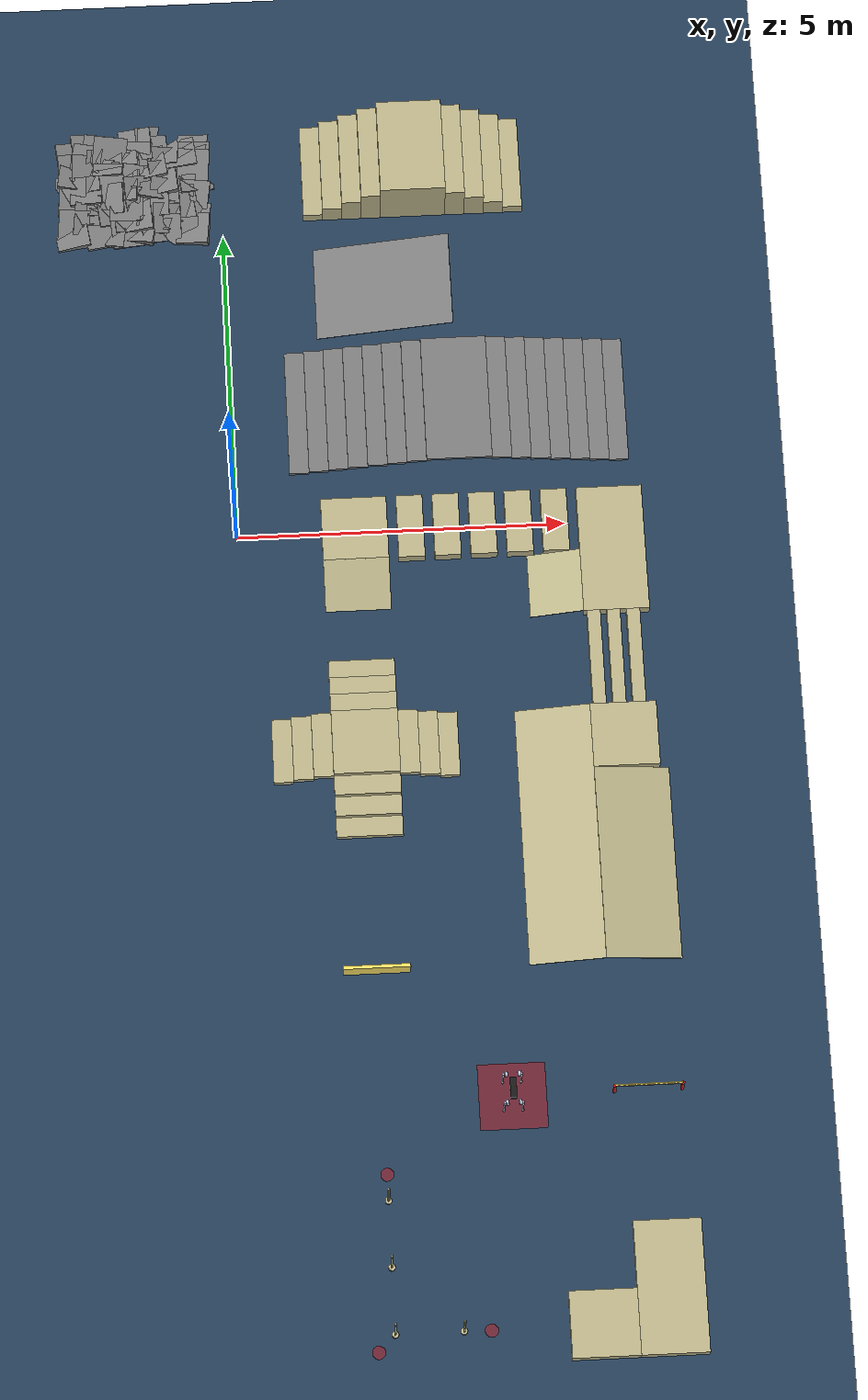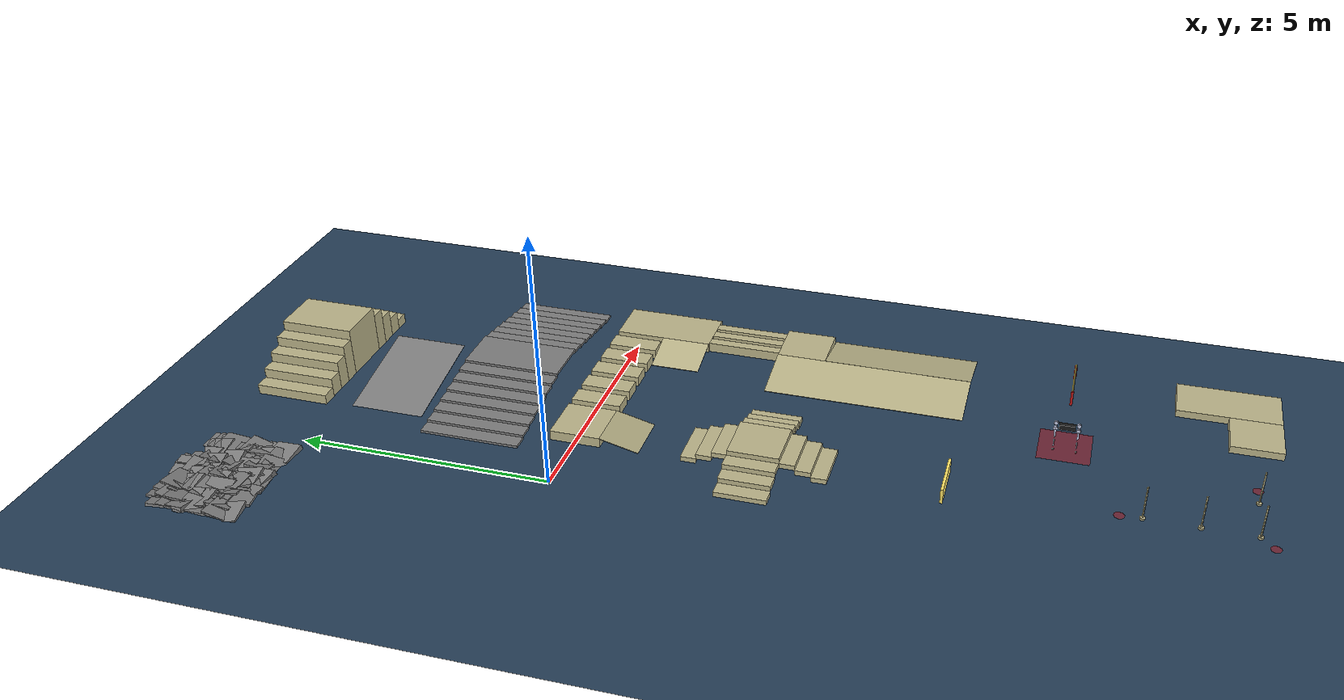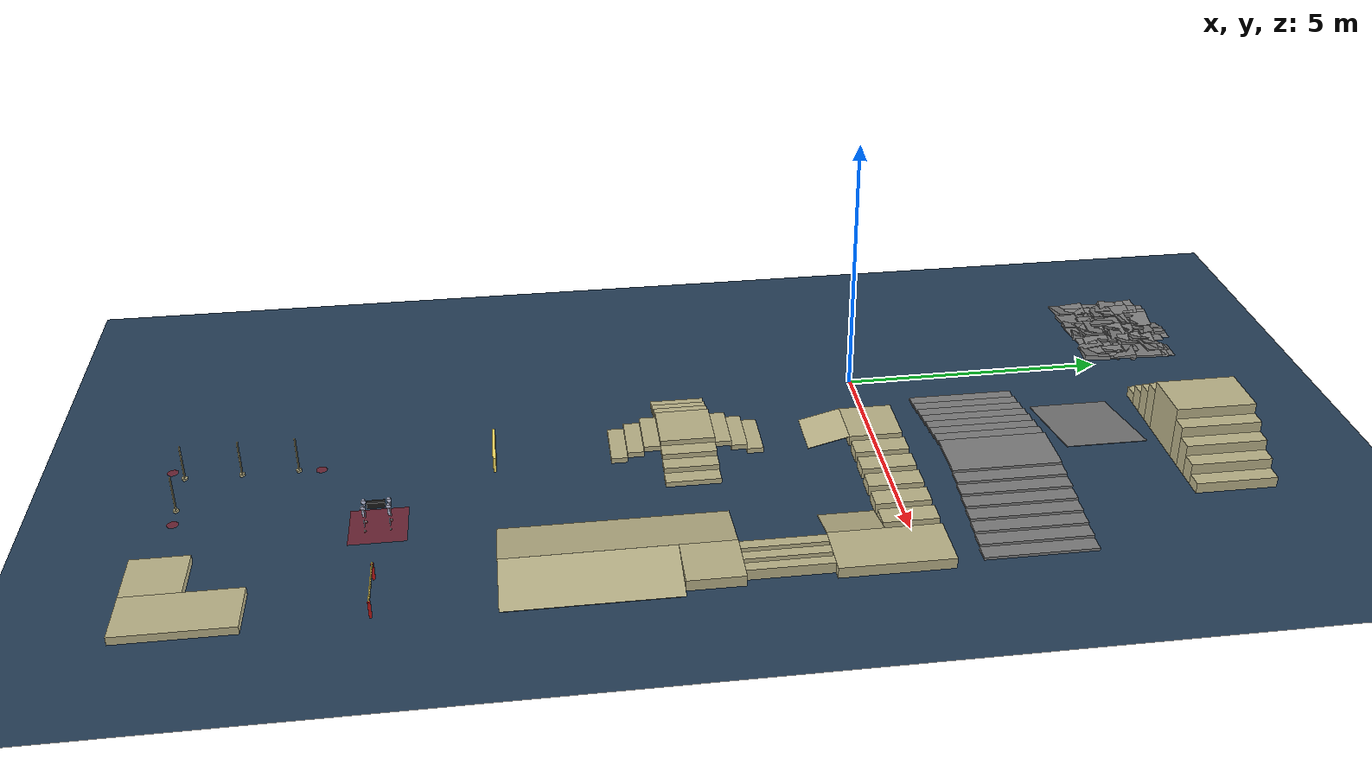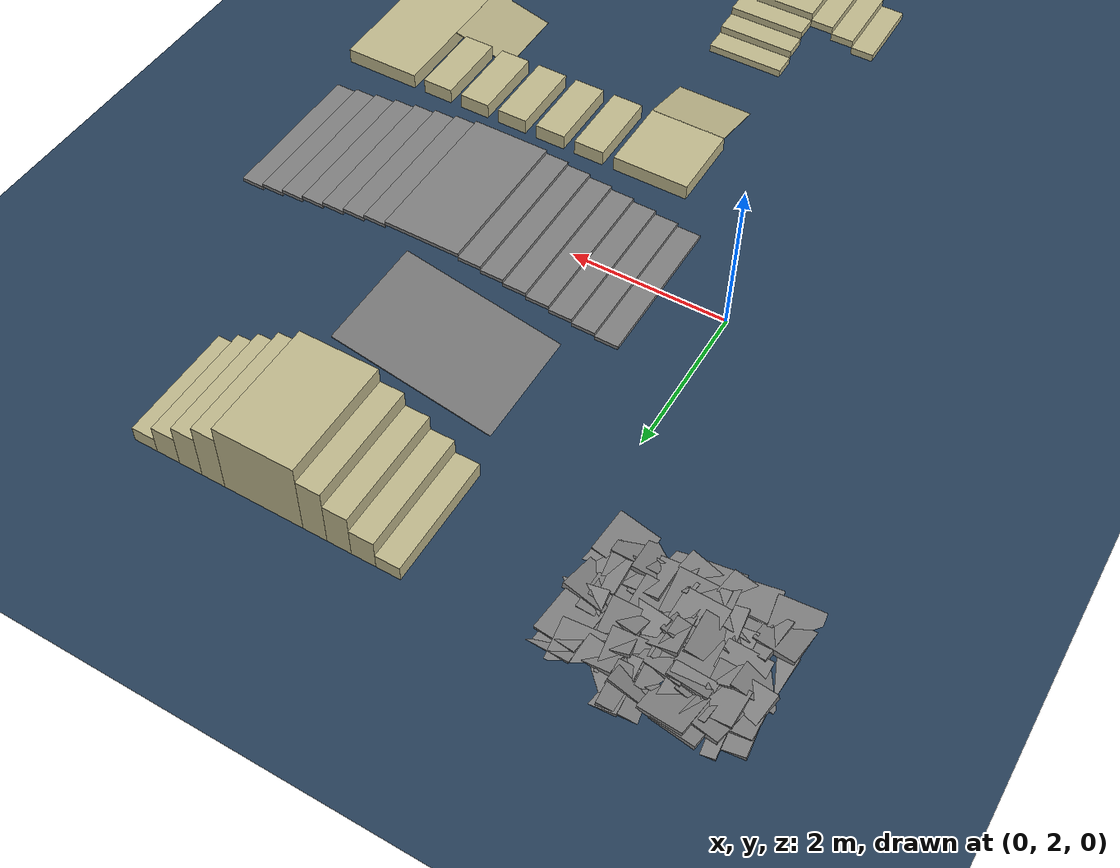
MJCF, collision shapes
<mujoco model="dog terrain scene">
<compiler angle="radian" meshdir="../meshes/"/>
<size njmax="500" nconmax="100"/>
<option gravity="0 0 -9.806" iterations="100" solver="Newton" timestep="0.005" integrator="implicitfast"/>

<default>
  <geom contype="1" conaffinity="1" condim="6" friction="0.6 0.005 0.01" margin="0.001" group="0"/>
  <light castshadow="false" diffuse="1 1 1"/>
  <joint damping="0.01" armature="0.01" frictionloss="0.2"/>
  <camera fovy="60"/>
</default>

<statistic center="3.7 -9.0 0.4" extent="5.0"/>
<visual>
<headlight diffuse="0.6 0.6 0.6" ambient="0.3 0.3 0.3" specular="0 0 0"/>
<rgba haze="0.15 0.25 0.35 1" com="0.502 1.0 0 0.5" contactforce="0.98 0.4 0.4 0.7" contactpoint="1.0 1.0 0.6 0.4"/>
<global azimuth="90" elevation="-20"/>
<scale com="0.2" forcewidth="0.035" contactwidth="0.10" contactheight="0.04"/>
</visual>
<asset>
<texture type="skybox" builtin="gradient" rgb1="0.3 0.5 0.7" rgb2="0 0 0" width="512" height="3072"/>
<texture type="2d" name="groundplane" builtin="checker" mark="edge" rgb1="0.2 0.3 0.4" rgb2="0.1 0.2 0.3" markrgb="0.8 0.8 0.8" width="300" height="300"/>
<material name="groundplane" texture="groundplane" texuniform="true" texrepeat="5 5" reflectance="0.2"/>

<!-- dog meshes -->
<mesh name="base"     file="base.STL"/>
<mesh name="ODIN1"    file="ODIN1.STL"/>
<mesh name="FL_hip"   file="FL_hip.STL"/>
<mesh name="FL_thigh" file="FL_thigh.STL"/>
<mesh name="FL_calf"  file="FL_calf.STL"/>
<mesh name="FL_foot"  file="FL_foot.STL"/>
<mesh name="FR_hip"   file="FR_hip.STL"/>
<mesh name="FR_thigh" file="FR_thigh.STL"/>
<mesh name="FR_calf"  file="FR_calf.STL"/>
<mesh name="FR_foot"  file="FR_foot.STL"/>
<mesh name="RR_hip"   file="RR_hip.STL"/>
<mesh name="RR_thigh" file="RR_thigh.STL"/>
<mesh name="RR_calf"  file="RR_calf.STL"/>
<mesh name="RR_foot"  file="RR_foot.STL"/>
<mesh name="RL_hip"   file="RL_hip.STL"/>
<mesh name="RL_thigh" file="RL_thigh.STL"/>
<mesh name="RL_calf"  file="RL_calf.STL"/>
<mesh name="RL_foot"  file="RR_foot.STL"/>
</asset>
<worldbody>
<light pos="0 0 1.5" dir="0 0 -1" directional="true" />
<camera name="track" mode="trackcom" pos="0 -1.3 1.6" xyaxes="1 0 0 0 0.707 0.707"/>
<geom name="floor" size="0 0 0.05" type="plane" material="groundplane" />

<!-- 30cm-high wall: rotated 90 degrees, placed along the x-axis, aligned with the T-shaped stairs centerline y=-3.50 -->
<geom pos="1.8 -7.0 0.15"
      type="box"
      size="0.025 0.5 0.15"
      quat="0.7071068 0.0 0.0 0.7071068"
      rgba="1.0 0.9 0.4 1.0"/>

<!-- Gravel and wood-chip pit: +x boundary aligned with the +x boundary of the 10-degree slope; +y boundary is 4m from the slope's -y boundary -->

<geom pos="4.8361 -12.5 0.075"
      type="box"
      size="0.5 0.5 0.075"
      quat="0.0 0.0 0.0 1.0"
      rgba="0.75 0.72 0.55 1.0"/>

<geom pos="5.8361 -12.0 0.075"
      type="box"
      size="0.5 1.0 0.075"
      quat="0.0 0.0 0.0 1.0"
      rgba="0.75 0.72 0.55 1.0"/>

<!-- Height-limit bar -->
<geom pos="6.2 -9.0 0.155"
      type="cylinder"
      size="0.025 0.155"
      quat="1.0 0.0 0.0 0.0"
      rgba="0.8 0.1 0.1 1.0" />

<geom pos="5.2 -9.0 0.155"
      type="cylinder"
      size="0.025 0.155"
      quat="1.0 0.0 0.0 0.0"
      rgba="0.8 0.1 0.1 1.0" />
<geom pos="5.7 -9.0 0.325"
      type="cylinder"
      size="0.015 0.5"
      quat="0.7071068 0.0 0.7071068 0.0"
      rgba="1.0 0.9 0.4 1.0"/>

<!-- 1m × 1m square colored patch, start zone -->
<geom pos="3.7 -9.0 0.0"
      type="box"
      size="0.5 0.5 0.001"
      rgba="1.0 0.0 0.0 0.35"
      contype="0"
      conaffinity="0" />

<!-- 10cm trapezoidal steps: T-shaped stairs, top platform aligned along the y-axis with the platform at x=5.7 y=-3.5 -->

<geom pos="1.80 -4.75 0.05" type="box" size="0.15 0.5 0.05" quat="0.7071068 0.0 0.0 0.7071068" rgba="0.75 0.72 0.55 1.0" />
<geom pos="1.80 -4.45 0.15" type="box" size="0.15 0.5 0.05" quat="0.7071068 0.0 0.0 0.7071068" rgba="0.75 0.72 0.55 1.0"/>
<geom pos="1.80 -4.15 0.25" type="box" size="0.15 0.5 0.05" quat="0.7071068 0.0 0.0 0.7071068" rgba="0.75 0.72 0.55 1.0"/>

<!-- Top platform: y = -3.50, aligned with the target platform along the y-axis -->
<geom pos="1.80 -3.50 0.35" type="box" size="0.5 0.5 0.05" quat="0.7071068 0.0 0.0 0.7071068" rgba="0.75 0.72 0.55 1.0"/>

<geom pos="1.80 -2.85 0.25" type="box" size="0.15 0.5 0.05" quat="0.7071068 0.0 0.0 0.7071068" rgba="0.75 0.72 0.55 1.0"/>
<geom pos="1.80 -2.55 0.15" type="box" size="0.15 0.5 0.05" quat="0.7071068 0.0 0.0 0.7071068" rgba="0.75 0.72 0.55 1.0"/>
<geom pos="1.80 -2.25 0.05" type="box" size="0.15 0.5 0.05" quat="0.7071068 0.0 0.0 0.7071068" rgba="0.75 0.72 0.55 1.0"/>

<!-- 10cm steps connecting the top platform to the ground in the +x direction, also moved to y = -3.50 -->

<geom pos="2.45 -3.50 0.25" type="box" size="0.15 0.5 0.05" quat="1.0 0.0 0.0 0.0" rgba="0.75 0.72 0.55 1.0"/>
<geom pos="2.75 -3.50 0.15" type="box" size="0.15 0.5 0.05" quat="1.0 0.0 0.0 0.0" rgba="0.75 0.72 0.55 1.0"/>
<geom pos="3.05 -3.50 0.05" type="box" size="0.15 0.5 0.05" quat="1.0 0.0 0.0 0.0" rgba="0.75 0.72 0.55 1.0"/>

<!-- 10cm steps connecting the top platform to the ground in the -x direction -->

<geom pos="1.15 -3.50 0.25" type="box" size="0.15 0.5 0.05" quat="1.0 0.0 0.0 0.0" rgba="0.75 0.72 0.55 1.0"/>
<geom pos="0.85 -3.50 0.15" type="box" size="0.15 0.5 0.05" quat="1.0 0.0 0.0 0.0" rgba="0.75 0.72 0.55 1.0"/>
<geom pos="0.55 -3.50 0.05" type="box" size="0.15 0.5 0.05" quat="1.0 0.0 0.0 0.0" rgba="0.75 0.72 0.55 1.0"/>

<!-- Ramp, wooden bridge A and wooden bridge B -->
<geom pos="1.8 -0.88 0.1" type="box" size="0.40 0.5 0.005" quat="0.701836 0.086175 -0.086175 0.701836" rgba="0.75 0.72 0.55 1.0"/>
<geom pos="1.8 0.0 0.10" type="box" size="0.5 0.5 0.10" quat="1.0 0.0 0.0 0.0" rgba="0.75 0.72 0.55 1.0"/>
<geom pos="2.65 0.0 0.10" type="box" size="0.2 0.5 0.10" quat="1.0 0.0 0.0 0.0" rgba="0.75 0.72 0.55 1.0"/>
<geom pos="3.2 0.0 0.10" type="box" size="0.2 0.5 0.10" quat="1.0 0.0 0.0 0.0" rgba="0.75 0.72 0.55 1.0"/>
<geom pos="3.75 0.0 0.10" type="box" size="0.2 0.5 0.10" quat="1.0 0.0 0.0 0.0" rgba="0.75 0.72 0.55 1.0"/>
<geom pos="4.3 0.0 0.10" type="box" size="0.2 0.5 0.10" quat="1.0 0.0 0.0 0.0" rgba="0.75 0.72 0.55 1.0"/>
<geom pos="4.85 0.0 0.10" type="box" size="0.2 0.5 0.10" quat="1.0 0.0 0.0 0.0" rgba="0.75 0.72 0.55 1.0"/>
<geom pos="5.7 -0.5 0.10" type="box" size="0.5 1.0 0.10" quat="1.0 0.0 0.0 0.0" rgba="0.75 0.72 0.55 1.0"/>
<geom pos="4.8002 -1.0 0.0951"
      type="box"
      size="0.4133 0.5 0.005"
      quat="0.992546 0.0 -0.121869 0.0"
      rgba="0.75 0.72 0.55 1.0"/>
<geom pos="5.35 -2.25 0.10" type="box" size="0.1 0.75 0.10" quat="1.0 0.0 0.0 0.0" rgba="0.75 0.72 0.55 1.0"/>
<geom pos="5.65 -2.25 0.10" type="box" size="0.1 0.75 0.10" quat="1.0 0.0 0.0 0.0" rgba="0.75 0.72 0.55 1.0"/>
<geom pos="5.95 -2.25 0.10" type="box" size="0.1 0.75 0.10" quat="1.0 0.0 0.0 0.0" rgba="0.75 0.72 0.55 1.0"/>
<geom pos="5.7 -3.5 0.10" type="box" size="0.5 0.5 0.10" quat="1.0 0.0 0.0 0.0" rgba="0.75 0.72 0.55 1.0"/>
<!-- 10-degree slope: 4m wide, slope's +y edge aligned with the platform's +y edge -->
<geom pos="4.6338 -5.0 0.0951"
      type="box"
      size="0.5759 2.0 0.005"
      quat="0.9961947 0.0 -0.0871557 0.0"
      rgba="0.75 0.72 0.55 1.0"/>
<!-- New 10-degree slope: 3m wide, high end joins the previous 10-degree slope's high end, descending in the +x direction -->
<geom pos="5.7681 -5.5 0.0951"
      type="box"
      size="0.5759 1.5 0.005"
      quat="0.9961947 0.0 0.0871557 0.0"
      rgba="0.75 0.72 0.55 1.0"/>

<!-- Slalom poles -->
<!-- 1m-diameter circular colored patch, visual only, no collision -->
<geom pos="1.8 -10.1 0.0"
      type="cylinder"
      size="0.1 0.001"
      rgba="1.0 0.0 0.0 0.35"
      contype="0"
      conaffinity="0" />

<geom pos="3.2 -12.5 0.0"
      type="cylinder"
      size="0.1 0.001"
      rgba="1.0 0.0 0.0 0.35"
      contype="0"
      conaffinity="0" />

<geom pos="1.55 -12.75 0.0"
      type="cylinder"
      size="0.1 0.001"
      rgba="1.0 0.0 0.0 0.35"
      contype="0"
      conaffinity="0" />

<!-- Original pole -->
<geom pos="1.8 -10.5 0.02"
      type="cylinder"
      size="0.05 0.02"
      quat="1.0 0.0 0.0 0.0"
      rgba="0.75 0.72 0.55 1.0" />

<geom pos="1.8 -10.5 0.37"
      type="cylinder"
      size="0.015 0.33"
      quat="1.0 0.0 0.0 0.0"
      rgba="0.75 0.72 0.55 1.0" />

<!-- 1st pole in the -y direction: 1m spacing -->
<geom pos="1.8 -11.5 0.02"
      type="cylinder"
      size="0.05 0.02"
      quat="1.0 0.0 0.0 0.0"
      rgba="0.75 0.72 0.55 1.0" />

<geom pos="1.8 -11.5 0.37"
      type="cylinder"
      size="0.015 0.33"
      quat="1.0 0.0 0.0 0.0"
      rgba="0.75 0.72 0.55 1.0" />

<!-- 2nd pole in the -y direction: another 1m spacing -->
<geom pos="1.8 -12.5 0.02"
      type="cylinder"
      size="0.05 0.02"
      quat="1.0 0.0 0.0 0.0"
      rgba="0.75 0.72 0.55 1.0" />

<geom pos="1.8 -12.5 0.37"
      type="cylinder"
      size="0.015 0.33"
      quat="1.0 0.0 0.0 0.0"
      rgba="0.75 0.72 0.55 1.0" />

<!-- 3rd pole in the +x direction: another 1m spacing -->
<geom pos="2.8 -12.5 0.02"
      type="cylinder"
      size="0.05 0.02"
      quat="1.0 0.0 0.0 0.0"
      rgba="0.75 0.72 0.55 1.0" />

<geom pos="2.8 -12.5 0.37"
      type="cylinder"
      size="0.015 0.33"
      quat="1.0 0.0 0.0 0.0"
      rgba="0.75 0.72 0.55 1.0" />

<!--===================================================================Other obstacles=====================================================================================-->

<!-- 5cm steps -->
<geom pos="1.0 2.0 0.025" type="box" size="0.15 1.0 0.025" quat="1.0 0.0 0.0 0.0" />
<geom pos="1.3 2.0 0.075" type="box" size="0.15 1.0 0.025" quat="1.0 0.0 0.0 0.0" />
<geom pos="1.6 2.0 0.125" type="box" size="0.15 1.0 0.025" quat="1.0 0.0 0.0 0.0" />
<geom pos="1.9 2.0 0.175" type="box" size="0.15 1.0 0.025" quat="1.0 0.0 0.0 0.0" />
<geom pos="2.2 2.0 0.225" type="box" size="0.15 1.0 0.025" quat="1.0 0.0 0.0 0.0" />
<geom pos="2.5 2.0 0.275" type="box" size="0.15 1.0 0.025" quat="1.0 0.0 0.0 0.0" />
<geom pos="2.8 2.0 0.325" type="box" size="0.15 1.0 0.025" quat="1.0 0.0 0.0 0.0" />
<geom pos="3.45 2.0 0.375" type="box" size="0.5 1.0 0.025" quat="1.0 0.0 0.0 0.0" />
<geom pos="4.1 2.0 0.325" type="box" size="0.15 1.0 0.025" quat="1.0 0.0 0.0 0.0" />
<geom pos="4.4 2.0 0.275" type="box" size="0.15 1.0 0.025" quat="1.0 0.0 0.0 0.0" />
<geom pos="4.7 2.0 0.225" type="box" size="0.15 1.0 0.025" quat="1.0 0.0 0.0 0.0" />
<geom pos="5.0 2.0 0.175" type="box" size="0.15 1.0 0.025" quat="1.0 0.0 0.0 0.0" />
<geom pos="5.3 2.0 0.125" type="box" size="0.15 1.0 0.025" quat="1.0 0.0 0.0 0.0" />
<geom pos="5.6 2.0 0.075" type="box" size="0.15 1.0 0.025" quat="1.0 0.0 0.0 0.0" />
<geom pos="5.9 2.0 0.025" type="box" size="0.15 1.0 0.025" quat="1.0 0.0 0.0 0.0" />

<!-- Slope -->
<geom pos="2.0 4.0 0.1" type="box" size="1.5 0.75 0.005" quat="0.9950041652780258 0.0 -0.09983341664682815 0.0" />

<!-- 20cm solid steps: each tread differs in height by 0.20m, 1m platform in the middle, ascend/descend on both sides -->
<geom pos="1.4 6.0 0.10" type="box" size="0.15 0.75 0.10" quat="1.0 0.0 0.0 0.0" rgba="0.75 0.72 0.55 1.0"/>
<geom pos="1.7 6.0 0.20" type="box" size="0.15 0.75 0.20" quat="1.0 0.0 0.0 0.0" rgba="0.75 0.72 0.55 1.0"/>
<geom pos="2.0 6.0 0.30" type="box" size="0.15 0.75 0.30" quat="1.0 0.0 0.0 0.0" rgba="0.75 0.72 0.55 1.0"/>
<geom pos="2.3 6.0 0.40" type="box" size="0.15 0.75 0.40" quat="1.0 0.0 0.0 0.0" rgba="0.75 0.72 0.55 1.0"/>
<geom pos="2.95 6.0 0.50" type="box" size="0.50 0.75 0.50" quat="1.0 0.0 0.0 0.0" rgba="0.75 0.72 0.55 1.0"/>
<geom pos="3.60 6.0 0.40" type="box" size="0.15 0.75 0.40" quat="1.0 0.0 0.0 0.0" rgba="0.75 0.72 0.55 1.0"/>
<geom pos="3.90 6.0 0.30" type="box" size="0.15 0.75 0.30" quat="1.0 0.0 0.0 0.0" rgba="0.75 0.72 0.55 1.0"/>
<geom pos="4.20 6.0 0.20" type="box" size="0.15 0.75 0.20" quat="1.0 0.0 0.0 0.0" rgba="0.75 0.72 0.55 1.0"/>
<geom pos="4.50 6.0 0.10" type="box" size="0.15 0.75 0.10" quat="1.0 0.0 0.0 0.0" rgba="0.75 0.72 0.55 1.0"/>
<geom pos="-2.3179973398407565 5.173660321080885 -0.25" type="box" size="0.2568216778785459 0.2608020098770089 0.2619541072037832" quat="0.9930658271270357 -0.05910360995856133 -0.06731065544310916 0.0761334482746007"/>
<geom pos="-2.3179973398407565 5.3620612607436735 -0.25" type="box" size="0.23778028947050467 0.26051225137569556 0.27137457425982286" quat="0.9959802827127009 0.07435995796871331 0.0004862731479656538 -0.04993632582444846"/>
<geom pos="-2.3179973398407565 5.545897059602109 -0.25" type="box" size="0.23841994611378936 0.2717839884518381 0.22585827399286504" quat="0.9983504429181294 -0.004811901627841528 0.03471877670768104 -0.045473566737405234"/>
<geom pos="-2.3179973398407565 5.7436240471772795 -0.25" type="box" size="0.2552179019048769 0.2548992578792955 0.22547735976326444" quat="0.9968270877924189 -0.029673908987198697 0.06777847718526858 -0.029347814214192768"/>
<geom pos="-2.3179973398407565 5.940214647011584 -0.25" type="box" size="0.24313116620329878 0.2372064979204117 0.26079933745117434" quat="0.9952106364954509 0.05088987714749159 -0.07605843245051555 -0.03436748846516202"/>
<geom pos="-2.3179973398407565 6.165430585901471 -0.25" type="box" size="0.24786042386990592 0.2322559052231109 0.2644037606269708" quat="0.9936075351397807 -0.05017393314139304 0.06986162224674641 -0.07311632022760194"/>
<geom pos="-2.3179973398407565 6.315657865031069 -0.25" type="box" size="0.23704265198840277 0.24982080672772003 0.2530694373586838" quat="0.9981716459301547 0.036179123385437884 0.04523497974247521 0.017269420947002005"/>
<geom pos="-2.3179973398407565 6.489372835072359 -0.25" type="box" size="0.2647428927965494 0.2716292502682415 0.23725049444938928" quat="0.9954041516289313 0.019099981466976248 0.07663366510923347 0.05415761257454444"/>
<geom pos="-2.094119617957536 5.194943631570213 -0.25" type="box" size="0.23176840693038148 0.23782936054799508 0.2282032657053922" quat="0.9973366591969123 0.030692664684553082 -0.030015392527106853 0.058962910104125923"/>
<geom pos="-2.094119617957536 5.441090326561234 -0.25" type="box" size="0.2602142310926322 0.27213502289176367 0.2574009440402366" quat="0.9948915480473169 0.023650461407535205 0.08508706956405496 -0.04890453856469255"/>
<geom pos="-2.094119617957536 5.642958951230403 -0.25" type="box" size="0.24800055056479955 0.24050676557282252 0.23522489807277194" quat="0.9912055235117067 0.06188914817453858 -0.09720856678264424 -0.0650525790586179"/>
<geom pos="-2.094119617957536 5.884810142659838 -0.25" type="box" size="0.24637516954806898 0.24364583504893206 0.2682443460752295" quat="0.9964495083946477 -0.07467561549070643 -0.038754439691442995 0.003165924091257204"/>
<geom pos="-2.094119617957536 6.129893093768145 -0.25" type="box" size="0.2378958269703999 0.25045408022075055 0.24760364656411665" quat="0.9946240462872651 -0.03963038800955788 -0.08917648605658504 0.03464091840526007"/>
<geom pos="-2.094119617957536 6.31135792935651 -0.25" type="box" size="0.2612154064649683 0.2252849660353503 0.26933214617336004" quat="0.997742809172301 0.019590451180868298 0.06391648942914147 -0.006339033565912353"/>
<geom pos="-2.094119617957536 6.4905285510291915 -0.25" type="box" size="0.22768983323309258 0.23025468157122184 0.2748062344121069" quat="0.9940843963100783 0.05105793020576152 0.009164090402224958 -0.0954218016127878"/>
<geom pos="-2.094119617957536 6.650993287072798 -0.25" type="box" size="0.25443787917913946 0.24575387105878618 0.22934424641420587" quat="0.9953832160779188 -0.0075142647566912866 0.08305501342257929 0.04751477371219154"/>
<geom pos="-1.8951777534978893 5.178742263102535 -0.25" type="box" size="0.256127371544264 0.24353861032614957 0.2714578153598507" quat="0.996547165679354 -0.008558846106514282 0.009384988866828401 0.08205129318749771"/>
<geom pos="-1.8951777534978893 5.353646654030374 -0.25" type="box" size="0.23858897994497189 0.2426691342857623 0.26961659613969635" quat="0.997689480058865 0.014145078555906384 0.009115651940537827 -0.06582190381793727"/>
<geom pos="-1.8951777534978893 5.575640096199311 -0.25" type="box" size="0.24430646334884096 0.2676093509240798 0.23693271670520474" quat="0.9976019172675967 -0.06794745094616256 0.006187887696065785 -0.011630503849579829"/>
<geom pos="-1.8951777534978893 5.728196634759373 -0.25" type="box" size="0.25668697148716296 0.2743986770827004 0.23696403861156407" quat="0.9946311966964959 -0.0774649076913635 0.05866511796477466 0.03558615698054331"/>
<geom pos="-1.8951777534978893 5.954288148947323 -0.25" type="box" size="0.2748179458028994 0.25407956175122554 0.25142548243710355" quat="0.9927720663552536 0.03885622734718657 0.06180632563910765 0.09525647469886914"/>
<geom pos="-1.8951777534978893 6.198076908897641 -0.25" type="box" size="0.23522918501552104 0.2714895927340788 0.23659922178360912" quat="0.9944408196408429 0.027722532803612636 -0.06883505448003607 -0.07470376618171105"/>
<geom pos="-1.8951777534978893 6.356335079330304 -0.25" type="box" size="0.253243646653926 0.26648639763264487 0.22751627090926196" quat="0.9924345646356405 0.06351743627133029 0.09661714031088077 -0.041283149154730255"/>
<geom pos="-1.8951777534978893 6.6037178705715744 -0.25" type="box" size="0.2664884535468762 0.26472237049442093 0.2545826559482188" quat="0.996208812433608 0.04792667434016892 0.03088022810200046 -0.06570728596343135"/>
<geom pos="-1.7450143557797366 5.181798049538029 -0.25" type="box" size="0.22764974830145798 0.2314500042225232 0.26635647118774647" quat="0.996420562587967 -0.02530598413067966 -0.01712092616039989 -0.07881968983996092"/>
<geom pos="-1.7450143557797366 5.396539066742657 -0.25" type="box" size="0.24515338305934362 0.25502436912192245 0.23509532716059323" quat="0.9974817825235419 0.033698559354477776 -0.06057332552735373 -0.01501242370995589"/>
<geom pos="-1.7450143557797366 5.5477605493550115 -0.25" type="box" size="0.2368415768982088 0.2653984778068547 0.25193186806340717" quat="0.9933816957092091 -0.04426535864216467 0.0892264769079807 0.057201577537394625"/>
<geom pos="-1.7450143557797366 5.764238738853998 -0.25" type="box" size="0.257475541143157 0.25587521442146555 0.2684267956125346" quat="0.9955849335110497 0.004076118120639651 -0.09299366924131539 0.012091439447074191"/>
<geom pos="-1.7450143557797366 5.942956213887727 -0.25" type="box" size="0.23647345784635188 0.22779489919605103 0.2690566454457882" quat="0.9997372307105926 0.020286738832439623 -0.010113822112874779 0.003410038259163467"/>
<geom pos="-1.7450143557797366 6.162981335139796 -0.25" type="box" size="0.2336152227884161 0.23785626414299832 0.26272786991330355" quat="0.9954569549676405 0.08638675499005252 -0.03150236191317218 -0.024705881136540285"/>
<geom pos="-1.7450143557797366 6.344025407207907 -0.25" type="box" size="0.2364006101773331 0.23674709170116234 0.2660167000427503" quat="0.9941020005048972 -0.09350614404282417 -0.05493059192638792 0.0006660998579442658"/>
<geom pos="-1.7450143557797366 6.5791872438688825 -0.25" type="box" size="0.259653062502181 0.26359758888480966 0.27170867851854713" quat="0.9955751902075182 0.06572529509454274 0.04059253213564211 -0.05350207998588654"/>
<geom pos="-1.4950537649717406 5.196975242498044 -0.25" type="box" size="0.24902209995429173 0.24604186796843594 0.26555264385759036" quat="0.9981753741369879 0.027059282981497578 0.02078151255996191 0.049818133312398136"/>
<geom pos="-1.4950537649717406 5.415093649392617 -0.25" type="box" size="0.22561317519118573 0.23246623591498758 0.2516053992906602" quat="0.9961431033663982 -0.019679813255757937 0.07777937635153075 0.035524515199325105"/>
<geom pos="-1.4950537649717406 5.596072881787104 -0.25" type="box" size="0.2545347271371952 0.2527292932516396 0.272364707011277" quat="0.9987990019474599 -0.0468132050914785 0.002764373695484487 -0.01419280718860587"/>
<geom pos="-1.4950537649717406 5.788444207457658 -0.25" type="box" size="0.257823578756761 0.22815201323013437 0.2506904868770564" quat="0.9907800223935689 0.08207700037219429 -0.06679273748567588 -0.08459931119619979"/>
<geom pos="-1.4950537649717406 5.962479724512656 -0.25" type="box" size="0.23447002037921025 0.260091883647859 0.2613547781123637" quat="0.994185747243896 -0.045779429335849345 -0.09537527521663794 -0.020062420196245392"/>
<geom pos="-1.4950537649717406 6.137620949716146 -0.25" type="box" size="0.25502378303486756 0.24137626830945555 0.26521755821448284" quat="0.9954511067004865 0.04827241542514884 0.023378972724717166 -0.07874193109224191"/>
<geom pos="-1.4950537649717406 6.345742058941403 -0.25" type="box" size="0.23763376291279575 0.27259418014745557 0.24184880568666417" quat="0.9979730938550316 -0.0521706328108408 -0.03256129013590577 0.01636127740178204"/>
<geom pos="-1.4950537649717406 6.548966807280673 -0.25" type="box" size="0.23004532593424165 0.24736965888987583 0.22917624237245732" quat="0.993938322382385 -0.041286377558295506 -0.09233464220936707 0.04308549844056845"/>
<geom pos="-1.2872521554407157 5.194072124237239 -0.25" type="box" size="0.2725857334366114 0.23611730648841156 0.25109418723334265" quat="0.9870880287314421 -0.09538067591152324 -0.0888119213223197 -0.09312460914696315"/>
<geom pos="-1.2872521554407157 5.418639818976418 -0.25" type="box" size="0.2326397456179607 0.2609646699674687 0.2717115772948157" quat="0.9928206111485406 -0.07383059897166898 -0.08473752136579614 0.040936892980589765"/>
<geom pos="-1.2872521554407157 5.655974569843163 -0.25" type="box" size="0.22633109461398734 0.25911291311168594 0.23532484499883452" quat="0.9947769304653071 -0.023834507399340135 0.09176246279588879 -0.037820963666801724"/>
<geom pos="-1.2872521554407157 5.8981628648303595 -0.25" type="box" size="0.27278934520816167 0.2559269445001904 0.26076472835929454" quat="0.9936318869346414 0.0561019165840355 0.09234219275279033 0.0319557140415977"/>
<geom pos="-1.2872521554407157 6.064939027275534 -0.25" type="box" size="0.2481756437845515 0.2613413397088905 0.24788858471207542" quat="0.9992310163557966 0.006919915638721734 0.03652449975321466 -0.012468024618680441"/>
<geom pos="-1.2872521554407157 6.288670079370122 -0.25" type="box" size="0.2574127585385611 0.27445220033632356 0.22507618952620437" quat="0.9984337612791753 0.04947883993440395 -0.0010074967830211658 -0.026093173185657285"/>
<geom pos="-1.2872521554407157 6.4987760234638605 -0.25" type="box" size="0.2442462188069663 0.2639082925274208 0.24918893213917415" quat="0.9910480688126146 0.08639971284060838 -0.0903343762232188 -0.04688832899783648"/>
<geom pos="-1.2872521554407157 6.675611985491267 -0.25" type="box" size="0.2507168814441121 0.26699708557208374 0.26588306060638556" quat="0.9968882348111167 0.009466759168649483 -0.06920917552433178 0.03652831489763918"/>
<geom pos="-1.0678149575697586 5.238251070535694 -0.25" type="box" size="0.2331754586513582 0.22873009754409884 0.2593258638743009" quat="0.9962563091989393 0.014506022500180732 0.069646748226122 0.049114887295595266"/>
<geom pos="-1.0678149575697586 5.471732496077581 -0.25" type="box" size="0.2653495693182789 0.26581370557074685 0.2509273010188512" quat="0.9948019811445705 -0.05898118120008214 0.04034485064897968 -0.07254330845220838"/>
<geom pos="-1.0678149575697586 5.691153717662407 -0.25" type="box" size="0.26309077142424103 0.26536949948987093 0.26566703066149744" quat="0.998331608401392 -0.025703385975953945 -0.05139460706256987 0.005650661991725779"/>
<geom pos="-1.0678149575697586 5.938910564562482 -0.25" type="box" size="0.23082606038737274 0.23890770539441533 0.25941695887199245" quat="0.99040745217393 -0.09494180013051996 0.05600240658814475 -0.08332384846283197"/>
<geom pos="-1.0678149575697586 6.13746533389903 -0.25" type="box" size="0.2676431215498913 0.2569308659994288 0.24597694927356487" quat="0.9955894165044442 0.04511524606234168 -0.003741035154326279 -0.08217258042101841"/>
<geom pos="-1.0678149575697586 6.328213254628996 -0.25" type="box" size="0.24188540919954635 0.25556145122229207 0.2605619987765001" quat="0.9929731934387934 -0.06598945456828725 -0.06809928840246085 0.07079629875087447"/>
<geom pos="-1.0678149575697586 6.554891603524267 -0.25" type="box" size="0.23121916641107804 0.25266417867731916 0.25489063309084503" quat="0.9984565221200774 -0.02714563973423854 0.029423903667849492 0.03849573446816443"/>
<geom pos="-1.0678149575697586 6.718482966003368 -0.25" type="box" size="0.27418971733780156 0.2623437838864593 0.23694037285314332" quat="0.9968347573500278 0.015128289848683302 0.06990516881209438 0.03471121949050888"/>
<geom pos="-0.8851136474992356 5.233272057743225 -0.25" type="box" size="0.2587161160845902 0.2542459313914242 0.25268742624288776" quat="0.9956323623605605 0.07455213252171443 -0.05585558926184348 0.006191260373025539"/>
<geom pos="-0.8851136474992356 5.410759300563648 -0.25" type="box" size="0.24019625793101548 0.2509280955260936 0.26698317271101046" quat="0.9960056830073374 0.025487333399660517 0.08516393482003458 -0.008377318140719903"/>
<geom pos="-0.8851136474992356 5.622546965631826 -0.25" type="box" size="0.22527085609750916 0.22924847380626232 0.23073331588883172" quat="0.9982201065088221 0.016292210993739946 0.013620740418279952 0.05572843307423328"/>
<geom pos="-0.8851136474992356 5.856118124892678 -0.25" type="box" size="0.26833255247166926 0.2512767990265972 0.2502231376336179" quat="0.9914910532543448 0.0657880493114159 0.05073139628229043 -0.10021850784978792"/>
<geom pos="-0.8851136474992356 6.010914595891683 -0.25" type="box" size="0.24926441451407527 0.22868800964152894 0.26501630221174116" quat="0.990736605756697 -0.0765632176593298 -0.09876375004658954 0.05314859727296924"/>
<geom pos="-0.8851136474992356 6.1657945570092965 -0.25" type="box" size="0.26823427325895977 0.263134568634285 0.23692064318485426" quat="0.9903439387899988 0.07219524819688558 0.09310840228148876 0.07305856872598579"/>
<geom pos="-0.8851136474992356 6.383066094410735 -0.25" type="box" size="0.23772929143507357 0.2619329708548053 0.23258884134606547" quat="0.9928463525385446 0.07348810370848206 0.09252710448645944 -0.017156742103069993"/>
<geom pos="-0.8851136474992356 6.551482176174038 -0.25" type="box" size="0.25127741834221506 0.25307864976328337 0.234931895271364" quat="0.994062479132312 -0.084918495271965 -0.05565932062022146 -0.03912386445844099"/>
<geom pos="-0.6441452943469552 5.193190826541208 -0.25" type="box" size="0.27016649011158844 0.23778885128164629 0.25859862297032477" quat="0.9957774962333289 0.08893738517887846 -0.021654911548168992 0.006955883744530942"/>
<geom pos="-0.6441452943469552 5.407266358883468 -0.25" type="box" size="0.24982888074520473 0.26972381569065607 0.2275629646713632" quat="0.9942571418988088 0.02444442288698024 0.050336521935401994 -0.09122193010664256"/>
<geom pos="-0.6441452943469552 5.56363948710079 -0.25" type="box" size="0.24725848381417467 0.2326432801330426 0.2476341019968084" quat="0.9935769557551848 -0.05688836927692267 -0.06858315894908604 0.0697488117593134"/>
<geom pos="-0.6441452943469552 5.716461923308758 -0.25" type="box" size="0.226746163574222 0.25188961955216527 0.24650452053954758" quat="0.9981029078160676 0.03471313574303335 -0.0493522060742233 -0.012245136651074443"/>
<geom pos="-0.6441452943469552 5.896430073001983 -0.25" type="box" size="0.25284949298017617 0.23421620066432108 0.2621382648463894" quat="0.9996413412447853 0.009523771195346772 -0.02374945051322109 -0.007902547492127014"/>
<geom pos="-0.6441452943469552 6.110845613879558 -0.25" type="box" size="0.23421403581041014 0.2504556848552827 0.24096555776925194" quat="0.9982371379292613 0.05906199571247059 0.004184466367765714 0.004097238396071534"/>
<geom pos="-0.6441452943469552 6.301410327752269 -0.25" type="box" size="0.2296817145699627 0.2701766916372966 0.22803599234835198" quat="0.9993879202059675 0.00903361239651759 0.0071600522792900426 -0.03302896372607247"/>
<geom pos="-0.6441452943469552 6.470340592771366 -0.25" type="box" size="0.2742166750011587 0.23990439594655139 0.2609404931878803" quat="0.9954980192986956 -0.06477558432537366 -0.03478863652617152 0.059812774691783824"/>
<geom pos="-0.43033316974190594 5.176946043237525 -0.25" type="box" size="0.2511344405622137 0.26383180387822514 0.2729516287367074" quat="0.9939152287364423 -0.054017256979398534 -0.08418383902399898 -0.0461273810376057"/>
<geom pos="-0.43033316974190594 5.409693792302493 -0.25" type="box" size="0.23878438774624536 0.22858057493504688 0.24808981791323623" quat="0.9942721168135948 -0.06322741578652484 -0.032958930763236916 -0.0796175891553822"/>
<geom pos="-0.43033316974190594 5.573593446642387 -0.25" type="box" size="0.2647545698926724 0.25215736713350106 0.25522885339490087" quat="0.9971918839448468 -0.004732654353889047 0.07222000940536273 0.019241071144380294"/>
<geom pos="-0.43033316974190594 5.819531161619798 -0.25" type="box" size="0.2538318010250847 0.23661725487197 0.26323696729639623" quat="0.9929867679849618 0.07588268800385974 -0.046355180482866284 -0.07791208834634974"/>
<geom pos="-0.43033316974190594 6.047888701789067 -0.25" type="box" size="0.25684720236482583 0.25568474221031684 0.24397094296107352" quat="0.9925256546500537 -0.08214715587137877 0.06615741576234473 0.06138294537877935"/>
<geom pos="-0.43033316974190594 6.283676056613722 -0.25" type="box" size="0.2432692787269645 0.2742601402399693 0.2689467974776609" quat="0.9989897410981501 0.0047037010179340685 0.0014590493232283363 -0.04466814919444852"/>
<geom pos="-0.43033316974190594 6.458239009480634 -0.25" type="box" size="0.2474330649412728 0.2551435998627988 0.23002773988805483" quat="0.9982311862818315 0.0506459597703481 0.025989046975463247 -0.01714802993392417"/>
<geom pos="-0.43033316974190594 6.703309377175586 -0.25" type="box" size="0.2301029552870502 0.2556223065028505 0.2349557527965884" quat="0.9948672058648923 -0.034182171957127715 -0.0030330068097560517 -0.09519255582537542"/>

<!-- ============ Dog Robot (spawn at red square 3.7, -9.0) ============ -->
<body name="trunk" pos="3.7 -9.0 0.45" quat="-0.7071068 0 0 0.7071068">
  <inertial pos="0.0063754 0 0" quat="1 0 0 0" mass="4.74" diaginertia="0.018108 0.039024 0.048926"/>
  <joint type="free"/>
  <geom type="mesh" mesh="base" contype="0" conaffinity="0" group="1" rgba="0.10196 0.10196 0.10196 1"/>
  <geom size="0.1531 0.04675 0.052" type="box" rgba="0.10196 0.10196 0.10196 0"/>
  <geom type="mesh" mesh="ODIN1" pos="0.21725 0 0.1165" contype="0" conaffinity="0" group="1" rgba="1 1 1 1"/>
  <site name="imu" pos="0 0 0"/>

  <!-- FL Leg -->
  <body name="FL_hip" pos="0.2145 0.05 0">
    <inertial pos="-0.010697 -0.0033174 0" quat="0.483303 0.483303 0.516157 0.516157" mass="0.33292" diaginertia="0.000342408 0.00025417 0.000178192"/>
    <joint name="FL_hip_joint" pos="0 0 0" axis="-1 0 0" range="-1.05 1.05" actuatorfrcrange="-17 17"/>
    <geom type="mesh" mesh="FL_hip" contype="0" conaffinity="0" group="1" rgba="0.79216 0.81961 0.93333 1"/>
    <geom size="0.04 0.02" pos="0 0.045 0" quat="0.707105 0.707108 0 0" type="cylinder" rgba="0.79216 0.81961 0.93333 0"/>
    <body name="FL_thigh" pos="0 0.088 0">
      <inertial pos="-0.0069171 -0.014196 -0.040905" quat="0.937237 -0.0612753 -0.0854854 -0.332451" mass="1.5467" diaginertia="0.00673267 0.0061914 0.00123923"/>
      <joint name="FL_thigh_joint" pos="0 0 0" axis="0 -1 0" range="-1.57 3.49" actuatorfrcrange="-17 17"/>
      <geom type="mesh" mesh="FL_thigh" contype="0" conaffinity="0" group="1" rgba="0.79216 0.81961 0.93333 1"/>
      <geom size="0.075 0.01225 0.017" pos="0 0 -0.075" quat="0.707105 0 0.707108 0" type="box" rgba="0.79216 0.81961 0.93333 0"/>
      <body name="FL_calf" pos="0 0 -0.22">
        <inertial pos="0.011153 4.09347e-10 -0.144935" quat="0.706789 0.0212082 0.0212082 0.706789" mass="0.1266" diaginertia="0.00082574 0.00081761 1.7692e-05"/>
        <joint name="FL_calf_joint" pos="0 0 0" axis="0 1 0" range="-2.72 -1" actuatorfrcrange="-34 34"/>
        <geom type="mesh" mesh="FL_calf" contype="0" conaffinity="0" group="1" rgba="0.79216 0.81961 0.93333 1"/>
        <geom size="0.07 0.008 0.008" pos="0 0 -0.07" quat="0.707105 0 0.707108 0" type="box" rgba="0.79216 0.81961 0.93333 0"/>
        <geom type="mesh" mesh="FL_foot" pos="0.001 0 -0.22349" contype="0" conaffinity="0" group="1" rgba="0.69804 0.69804 0.69804 1"/>
        <geom name="FL_foot_col" size="0.02" pos="0 0 -0.22849" rgba="0.69804 0.69804 0.69804 0"/>
      </body>
    </body>
  </body>

  <!-- FR Leg -->
  <body name="FR_hip" pos="0.2145 -0.05 0">
    <inertial pos="-0.010697 0.0033174 0" quat="0.516157 0.516157 0.483303 0.483303" mass="0.33292" diaginertia="0.000342408 0.00025417 0.000178192"/>
    <joint name="FR_hip_joint" pos="0 0 0" axis="-1 0 0" range="-1.05 1.05" actuatorfrcrange="-17 17"/>
    <geom type="mesh" mesh="FR_hip" contype="0" conaffinity="0" group="1" rgba="0.79216 0.81961 0.93333 1"/>
    <geom size="0.04 0.02" pos="0 -0.045 0" quat="0.707105 0.707108 0 0" type="cylinder" rgba="0.79216 0.81961 0.93333 0"/>
    <body name="FR_thigh" pos="0 -0.088 0">
      <inertial pos="-0.0069171 0.014196 -0.040905" quat="0.937237 0.0612753 -0.0854854 0.332451" mass="1.5467" diaginertia="0.00673267 0.0061914 0.00123923"/>
      <joint name="FR_thigh_joint" pos="0 0 0" axis="0 1 0" range="-1.57 3.49" actuatorfrcrange="-17 17"/>
      <geom type="mesh" mesh="FR_thigh" contype="0" conaffinity="0" group="1" rgba="0.79216 0.81961 0.93333 1"/>
      <geom size="0.075 0.01225 0.017" pos="0 0 -0.075" quat="0.707105 0 0.707108 0" type="box" rgba="0.79216 0.81961 0.93333 0"/>
      <body name="FR_calf" pos="0 0 -0.22">
        <inertial pos="0.011153 4.14072e-10 -0.144935" quat="0.706788 0.0212297 0.0212297 0.706788" mass="0.1266" diaginertia="0.00082574 0.00081755 1.7749e-05"/>
        <joint name="FR_calf_joint" pos="0 0 0" axis="0 -1 0" range="1 2.72" actuatorfrcrange="-34 34"/>
        <geom type="mesh" mesh="FR_calf" contype="0" conaffinity="0" group="1" rgba="0.79216 0.81961 0.93333 1"/>
        <geom size="0.07 0.008 0.008" pos="0 0 -0.07" quat="0.707105 0 0.707108 0" type="box" rgba="0.79216 0.81961 0.93333 0"/>
        <geom type="mesh" mesh="FR_foot" pos="0.001 0 -0.22349" contype="0" conaffinity="0" group="1" rgba="0.69804 0.69804 0.69804 1"/>
        <geom name="FR_foot_col" size="0.02" pos="0 0 -0.22849" rgba="0.69804 0.69804 0.69804 0"/>
      </body>
    </body>
  </body>

  <!-- RR Leg -->
  <body name="RR_hip" pos="-0.2145 -0.05 0">
    <inertial pos="0.010697 0.0033174 0" quat="0.483303 0.483303 0.516157 0.516157" mass="0.33292" diaginertia="0.000342408 0.00025417 0.000178192"/>
    <joint name="RR_hip_joint" pos="0 0 0" axis="1 0 0" range="-1.05 1.05" actuatorfrcrange="-17 17"/>
    <geom type="mesh" mesh="RR_hip" contype="0" conaffinity="0" group="1" rgba="0.79216 0.81961 0.93333 1"/>
    <geom size="0.04 0.02" pos="0 -0.045 0" quat="0.707105 0.707108 0 0" type="cylinder" rgba="0.79216 0.81961 0.93333 0"/>
    <body name="RR_thigh" pos="0 -0.088 0">
      <inertial pos="-0.0069171 0.014196 -0.040905" quat="0.937237 0.0612753 -0.0854854 0.332451" mass="1.5467" diaginertia="0.00673267 0.0061914 0.00123923"/>
      <joint name="RR_thigh_joint" pos="0 0 0" axis="0 1 0" range="-1.57 3.49" actuatorfrcrange="-17 17"/>
      <geom type="mesh" mesh="RR_thigh" contype="0" conaffinity="0" group="1" rgba="0.79216 0.81961 0.93333 1"/>
      <geom size="0.075 0.01225 0.017" pos="0 0 -0.075" quat="0.707105 0 0.707108 0" type="box" rgba="0.79216 0.81961 0.93333 0"/>
      <body name="RR_calf" pos="0 0 -0.22">
        <inertial pos="0.011153 4.14072e-10 -0.144935" quat="0.706788 0.0212297 0.0212297 0.706788" mass="0.1266" diaginertia="0.00082574 0.00081755 1.7749e-05"/>
        <joint name="RR_calf_joint" pos="0 0 0" axis="0 -1 0" range="1 2.72" actuatorfrcrange="-34 34"/>
        <geom type="mesh" mesh="RR_calf" contype="0" conaffinity="0" group="1" rgba="0.79216 0.81961 0.93333 1"/>
        <geom size="0.07 0.008 0.008" pos="0 0 -0.07" quat="0.707105 0 0.707108 0" type="box" rgba="0.79216 0.81961 0.93333 0"/>
        <geom type="mesh" mesh="RR_foot" pos="0.001 0 -0.22349" contype="0" conaffinity="0" group="1" rgba="0.69804 0.69804 0.69804 1"/>
        <geom name="RR_foot_col" size="0.02" pos="0 0 -0.22849" rgba="0.69804 0.69804 0.69804 0"/>
      </body>
    </body>
  </body>

  <!-- RL Leg -->
  <body name="RL_hip" pos="-0.2145 0.05 0">
    <inertial pos="0.010697 -0.0033174 0" quat="0.516157 0.516157 0.483303 0.483303" mass="0.33292" diaginertia="0.000342408 0.00025417 0.000178192"/>
    <joint name="RL_hip_joint" pos="0 0 0" axis="1 0 0" range="-1.05 1.05" actuatorfrcrange="-17 17"/>
    <geom type="mesh" mesh="RL_hip" contype="0" conaffinity="0" group="1" rgba="0.79216 0.81961 0.93333 1"/>
    <geom size="0.04 0.02" pos="0 0.045 0" quat="0.707105 0.707108 0 0" type="cylinder" rgba="0.79216 0.81961 0.93333 0"/>
    <body name="RL_thigh" pos="0 0.088 0">
      <inertial pos="-0.0069171 -0.014196 -0.040905" quat="0.937237 -0.0612753 -0.0854854 -0.332451" mass="1.5467" diaginertia="0.00673267 0.0061914 0.00123923"/>
      <joint name="RL_thigh_joint" pos="0 0 0" axis="0 -1 0" range="-1.57 3.49" actuatorfrcrange="-17 17"/>
      <geom type="mesh" mesh="RL_thigh" contype="0" conaffinity="0" group="1" rgba="0.79216 0.81961 0.93333 1"/>
      <geom size="0.075 0.01225 0.017" pos="0 0 -0.075" quat="0.707105 0 0.707108 0" type="box" rgba="0.79216 0.81961 0.93333 0"/>
      <body name="RL_calf" pos="0 0 -0.22">
        <inertial pos="0.0111521 4.07726e-10 -0.144935" quat="0.706788 0.021234 0.021234 0.706788" mass="0.1266" diaginertia="0.00082574 0.00081756 1.7750e-05"/>
        <joint name="RL_calf_joint" pos="0 0 0" axis="0 1 0" range="-2.72 -1" actuatorfrcrange="-34 34"/>
        <geom type="mesh" mesh="RL_calf" contype="0" conaffinity="0" group="1" rgba="0.79216 0.81961 0.93333 1"/>
        <geom size="0.07 0.008 0.008" pos="0 0 -0.07" quat="0.707105 0 0.707108 0" type="box" rgba="0.79216 0.81961 0.93333 0"/>
        <geom type="mesh" mesh="RL_foot" pos="0.001 0 -0.22349" contype="0" conaffinity="0" group="1" rgba="0.69804 0.69804 0.69804 1"/>
        <geom name="RL_foot_col" size="0.02" pos="0 0 -0.22849" rgba="0.69804 0.69804 0.69804 0"/>
      </body>
    </body>
  </body>

</body><!-- end trunk -->

</worldbody>

<!-- ============ Actuators ============ -->
<actuator>
  <motor name="FL_hip"   gear="1" joint="FL_hip_joint"   ctrlrange="-23.7 23.7"   ctrllimited="true"/>
  <motor name="FL_thigh" gear="1" joint="FL_thigh_joint" ctrlrange="-23.7 23.7"   ctrllimited="true"/>
  <motor name="FL_calf"  gear="1" joint="FL_calf_joint"  ctrlrange="-35.55 35.55" ctrllimited="true"/>
  <motor name="FR_hip"   gear="1" joint="FR_hip_joint"   ctrlrange="-23.7 23.7"   ctrllimited="true"/>
  <motor name="FR_thigh" gear="1" joint="FR_thigh_joint" ctrlrange="-23.7 23.7"   ctrllimited="true"/>
  <motor name="FR_calf"  gear="1" joint="FR_calf_joint"  ctrlrange="-35.55 35.55" ctrllimited="true"/>
  <motor name="RR_hip"   gear="1" joint="RR_hip_joint"   ctrlrange="-23.7 23.7"   ctrllimited="true"/>
  <motor name="RR_thigh" gear="1" joint="RR_thigh_joint" ctrlrange="-23.7 23.7"   ctrllimited="true"/>
  <motor name="RR_calf"  gear="1" joint="RR_calf_joint"  ctrlrange="-35.55 35.55" ctrllimited="true"/>
  <motor name="RL_hip"   gear="1" joint="RL_hip_joint"   ctrlrange="-23.7 23.7"   ctrllimited="true"/>
  <motor name="RL_thigh" gear="1" joint="RL_thigh_joint" ctrlrange="-23.7 23.7"   ctrllimited="true"/>
  <motor name="RL_calf"  gear="1" joint="RL_calf_joint"  ctrlrange="-35.55 35.55" ctrllimited="true"/>
</actuator>

<!-- ============ Sensors ============ -->
<sensor>
  <jointpos name="FL_hip_pos"   joint="FL_hip_joint"/>
  <jointpos name="FL_thigh_pos" joint="FL_thigh_joint"/>
  <jointpos name="FL_calf_pos"  joint="FL_calf_joint"/>
  <jointpos name="FR_hip_pos"   joint="FR_hip_joint"/>
  <jointpos name="FR_thigh_pos" joint="FR_thigh_joint"/>
  <jointpos name="FR_calf_pos"  joint="FR_calf_joint"/>
  <jointpos name="RR_hip_pos"   joint="RR_hip_joint"/>
  <jointpos name="RR_thigh_pos" joint="RR_thigh_joint"/>
  <jointpos name="RR_calf_pos"  joint="RR_calf_joint"/>
  <jointpos name="RL_hip_pos"   joint="RL_hip_joint"/>
  <jointpos name="RL_thigh_pos" joint="RL_thigh_joint"/>
  <jointpos name="RL_calf_pos"  joint="RL_calf_joint"/>

  <jointvel name="FL_hip_vel"   joint="FL_hip_joint"/>
  <jointvel name="FL_thigh_vel" joint="FL_thigh_joint"/>
  <jointvel name="FL_calf_vel"  joint="FL_calf_joint"/>
  <jointvel name="FR_hip_vel"   joint="FR_hip_joint"/>
  <jointvel name="FR_thigh_vel" joint="FR_thigh_joint"/>
  <jointvel name="FR_calf_vel"  joint="FR_calf_joint"/>
  <jointvel name="RR_hip_vel"   joint="RR_hip_joint"/>
  <jointvel name="RR_thigh_vel" joint="RR_thigh_joint"/>
  <jointvel name="RR_calf_vel"  joint="RR_calf_joint"/>
  <jointvel name="RL_hip_vel"   joint="RL_hip_joint"/>
  <jointvel name="RL_thigh_vel" joint="RL_thigh_joint"/>
  <jointvel name="RL_calf_vel"  joint="RL_calf_joint"/>

  <accelerometer name="Body_Acc"  site="imu"/>
  <gyro          name="Body_Gyro" site="imu"/>
  <framepos      name="Body_Pos"  objtype="site" objname="imu"/>
  <framequat     name="Body_Quat" objtype="site" objname="imu"/>
</sensor>

</mujoco>
